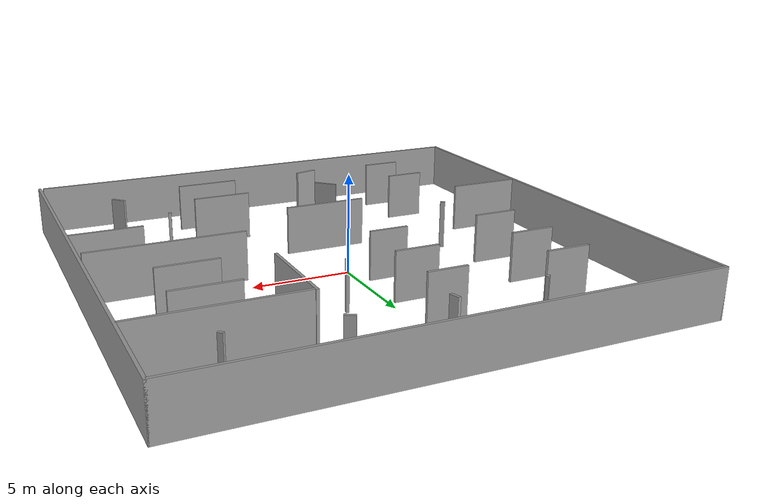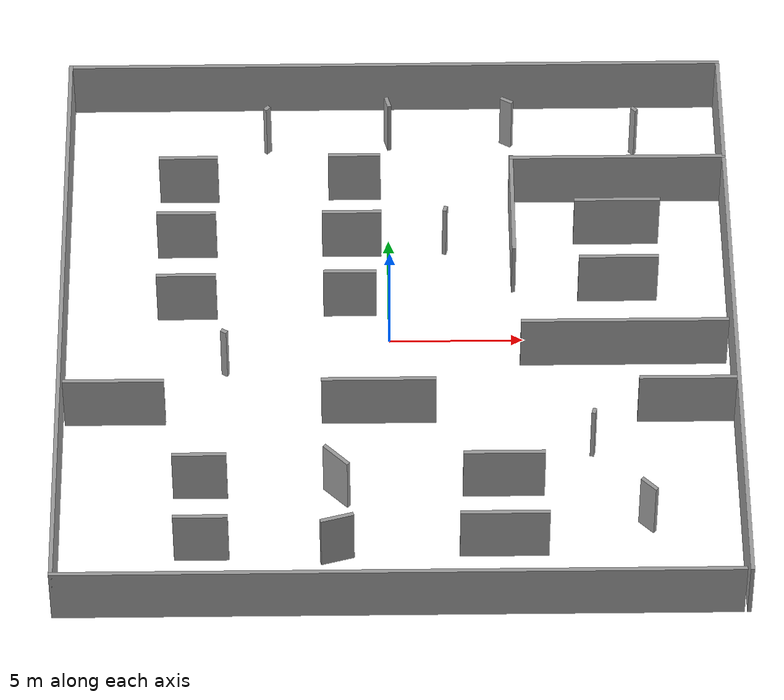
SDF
<?xml version='1.0'?>
<sdf version='1.7'>
  <model name='Untitled'>
    <pose>0.288291 -0.441187 0 0 -0 0</pose>
    <link name='Wall_1'>
      <collision name='Wall_1_Collision'>
        <geometry>
          <box>
            <size>25 0.15 2.5</size>
          </box>
        </geometry>
        <pose>0 0 1.25 0 -0 0</pose>
      </collision>
      <visual name='Wall_1_Visual'>
        <pose>0 0 1.25 0 -0 0</pose>
        <geometry>
          <box>
            <size>25 0.15 2.5</size>
          </box>
        </geometry>
        <material>
          <script>
            <uri>file://media/materials/scripts/gazebo.material</uri>
            <name>Gazebo/Grey</name>
          </script>
          <ambient>1 1 1 1</ambient>
        </material>
        <meta>
          <layer>0</layer>
        </meta>
      </visual>
      <pose>-12.55 -0 0 0 -0 -1.5708</pose>
    </link>
    <link name='Wall_10'>
      <collision name='Wall_10_Collision'>
        <geometry>
          <box>
            <size>7.75 0.15 2.5</size>
          </box>
        </geometry>
        <pose>0 0 1.25 0 -0 0</pose>
      </collision>
      <visual name='Wall_10_Visual'>
        <pose>0 0 1.25 0 -0 0</pose>
        <geometry>
          <box>
            <size>7.75 0.15 2.5</size>
          </box>
        </geometry>
        <material>
          <script>
            <uri>file://media/materials/scripts/gazebo.material</uri>
            <name>Gazebo/Grey</name>
          </script>
          <ambient>1 1 1 1</ambient>
        </material>
        <meta>
          <layer>0</layer>
        </meta>
      </visual>
      <pose>8.45676 -0.713653 0 0 -0 0</pose>
    </link>
    <link name='Wall_12'>
      <collision name='Wall_12_Collision'>
        <geometry>
          <box>
            <size>4.76551 0.15 2.5</size>
          </box>
        </geometry>
        <pose>0 0 1.25 0 -0 0</pose>
      </collision>
      <visual name='Wall_12_Visual'>
        <pose>0 0 1.25 0 -0 0</pose>
        <geometry>
          <box>
            <size>4.76551 0.15 2.5</size>
          </box>
        </geometry>
        <material>
          <script>
            <uri>file://media/materials/scripts/gazebo.material</uri>
            <name>Gazebo/Grey</name>
          </script>
          <ambient>1 1 1 1</ambient>
        </material>
        <meta>
          <layer>0</layer>
        </meta>
      </visual>
      <pose>4.41402 5.23153 0 0 -0 -1.5708</pose>
    </link>
    <link name='Wall_14'>
      <collision name='Wall_14_Collision'>
        <geometry>
          <box>
            <size>3.75 0.15 2.5</size>
          </box>
        </geometry>
        <pose>0 0 1.25 0 -0 0</pose>
      </collision>
      <visual name='Wall_14_Visual'>
        <pose>0 0 1.25 0 -0 0</pose>
        <geometry>
          <box>
            <size>3.75 0.15 2.5</size>
          </box>
        </geometry>
        <material>
          <script>
            <uri>file://media/materials/scripts/gazebo.material</uri>
            <name>Gazebo/Grey</name>
          </script>
          <ambient>1 1 1 1</ambient>
        </material>
        <meta>
          <layer>0</layer>
        </meta>
      </visual>
      <pose>-10.5346 -3.46463 0 0 -0 0</pose>
    </link>
    <link name='Wall_17'>
      <collision name='Wall_17_Collision'>
        <geometry>
          <box>
            <size>4.25 0.15 2.5</size>
          </box>
        </geometry>
        <pose>0 0 1.25 0 -0 0</pose>
      </collision>
      <visual name='Wall_17_Visual'>
        <pose>0 0 1.25 0 -0 0</pose>
        <geometry>
          <box>
            <size>4.25 0.15 2.5</size>
          </box>
        </geometry>
        <material>
          <script>
            <uri>file://media/materials/scripts/gazebo.material</uri>
            <name>Gazebo/Grey</name>
          </script>
          <ambient>1 1 1 1</ambient>
        </material>
        <meta>
          <layer>0</layer>
        </meta>
      </visual>
      <pose>-0.737069 -3.46463 0 0 -0 0</pose>
    </link>
    <link name='Wall_19'>
      <collision name='Wall_19_Collision'>
        <geometry>
          <box>
            <size>3.75 0.15 2.5</size>
          </box>
        </geometry>
        <pose>0 0 1.25 0 -0 0</pose>
      </collision>
      <visual name='Wall_19_Visual'>
        <pose>0 0 1.25 0 -0 0</pose>
        <geometry>
          <box>
            <size>3.75 0.15 2.5</size>
          </box>
        </geometry>
        <material>
          <script>
            <uri>file://media/materials/scripts/gazebo.material</uri>
            <name>Gazebo/Grey</name>
          </script>
          <ambient>1 1 1 1</ambient>
        </material>
        <meta>
          <layer>0</layer>
        </meta>
      </visual>
      <pose>10.745 -3.50509 0 0 -0 0</pose>
    </link>
    <link name='Wall_21'>
      <collision name='Wall_21_Collision'>
        <geometry>
          <box>
            <size>2.25 0.15 2.5</size>
          </box>
        </geometry>
        <pose>0 0 1.25 0 -0 0</pose>
      </collision>
      <visual name='Wall_21_Visual'>
        <pose>0 0 1.25 0 -0 0</pose>
        <geometry>
          <box>
            <size>2.25 0.15 2.5</size>
          </box>
        </geometry>
        <material>
          <script>
            <uri>file://media/materials/scripts/gazebo.material</uri>
            <name>Gazebo/Grey</name>
          </script>
          <ambient>1 1 1 1</ambient>
        </material>
        <meta>
          <layer>0</layer>
        </meta>
      </visual>
      <pose>-7.92677 7.62019 0 0 -0 0</pose>
    </link>
    <link name='Wall_23'>
      <collision name='Wall_23_Collision'>
        <geometry>
          <box>
            <size>2.25 0.15 2.5</size>
          </box>
        </geometry>
        <pose>0 0 1.25 0 -0 0</pose>
      </collision>
      <visual name='Wall_23_Visual'>
        <pose>0 0 1.25 0 -0 0</pose>
        <geometry>
          <box>
            <size>2.25 0.15 2.5</size>
          </box>
        </geometry>
        <material>
          <script>
            <uri>file://media/materials/scripts/gazebo.material</uri>
            <name>Gazebo/Grey</name>
          </script>
          <ambient>1 1 1 1</ambient>
        </material>
        <meta>
          <layer>0</layer>
        </meta>
      </visual>
      <pose>-7.96723 4.78831 0 0 -0 0</pose>
    </link>
    <link name='Wall_25'>
      <collision name='Wall_25_Collision'>
        <geometry>
          <box>
            <size>2.25 0.15 2.5</size>
          </box>
        </geometry>
        <pose>0 0 1.25 0 -0 0</pose>
      </collision>
      <visual name='Wall_25_Visual'>
        <pose>0 0 1.25 0 -0 0</pose>
        <geometry>
          <box>
            <size>2.25 0.15 2.5</size>
          </box>
        </geometry>
        <material>
          <script>
            <uri>file://media/materials/scripts/gazebo.material</uri>
            <name>Gazebo/Grey</name>
          </script>
          <ambient>1 1 1 1</ambient>
        </material>
        <meta>
          <layer>0</layer>
        </meta>
      </visual>
      <pose>-7.92677 1.67323 0 0 -0 0</pose>
    </link>
    <link name='Wall_27'>
      <collision name='Wall_27_Collision'>
        <geometry>
          <box>
            <size>2 0.15 2.5</size>
          </box>
        </geometry>
        <pose>0 0 1.25 0 -0 0</pose>
      </collision>
      <visual name='Wall_27_Visual'>
        <pose>0 0 1.25 0 -0 0</pose>
        <geometry>
          <box>
            <size>2 0.15 2.5</size>
          </box>
        </geometry>
        <material>
          <script>
            <uri>file://media/materials/scripts/gazebo.material</uri>
            <name>Gazebo/Grey</name>
          </script>
          <ambient>1 1 1 1</ambient>
        </material>
        <meta>
          <layer>0</layer>
        </meta>
      </visual>
      <pose>-1.57888 7.70111 0 0 -0 0</pose>
    </link>
    <link name='Wall_29'>
      <collision name='Wall_29_Collision'>
        <geometry>
          <box>
            <size>2.25 0.15 2.5</size>
          </box>
        </geometry>
        <pose>0 0 1.25 0 -0 0</pose>
      </collision>
      <visual name='Wall_29_Visual'>
        <pose>0 0 1.25 0 -0 0</pose>
        <geometry>
          <box>
            <size>2.25 0.15 2.5</size>
          </box>
        </geometry>
        <material>
          <script>
            <uri>file://media/materials/scripts/gazebo.material</uri>
            <name>Gazebo/Grey</name>
          </script>
          <ambient>1 1 1 1</ambient>
        </material>
        <meta>
          <layer>0</layer>
        </meta>
      </visual>
      <pose>-1.69661 4.78831 0 0 -0 0</pose>
    </link>
    <link name='Wall_3'>
      <collision name='Wall_3_Collision'>
        <geometry>
          <box>
            <size>25 0.15 2.5</size>
          </box>
        </geometry>
        <pose>0 0 1.25 0 -0 0</pose>
      </collision>
      <visual name='Wall_3_Visual'>
        <pose>0 0 1.25 0 -0 0</pose>
        <geometry>
          <box>
            <size>25 0.15 2.5</size>
          </box>
        </geometry>
        <material>
          <script>
            <uri>file://media/materials/scripts/gazebo.material</uri>
            <name>Gazebo/Grey</name>
          </script>
          <ambient>1 1 1 1</ambient>
        </material>
        <meta>
          <layer>0</layer>
        </meta>
      </visual>
      <pose>-0.125 -12.425 0 0 -0 0</pose>
    </link>
    <link name='Wall_31'>
      <collision name='Wall_31_Collision'>
        <geometry>
          <box>
            <size>2 0.15 2.5</size>
          </box>
        </geometry>
        <pose>0 0 1.25 0 -0 0</pose>
      </collision>
      <visual name='Wall_31_Visual'>
        <pose>0 0 1.25 0 -0 0</pose>
        <geometry>
          <box>
            <size>2 0.15 2.5</size>
          </box>
        </geometry>
        <material>
          <script>
            <uri>file://media/materials/scripts/gazebo.material</uri>
            <name>Gazebo/Grey</name>
          </script>
          <ambient>1 1 1 1</ambient>
        </material>
        <meta>
          <layer>0</layer>
        </meta>
      </visual>
      <pose>-1.78116 1.79459 0 0 -0 0</pose>
    </link>
    <link name='Wall_34'>
      <collision name='Wall_34_Collision'>
        <geometry>
          <box>
            <size>3.25 0.15 2.5</size>
          </box>
        </geometry>
        <pose>0 0 1.25 0 -0 0</pose>
      </collision>
      <visual name='Wall_34_Visual'>
        <pose>0 0 1.25 0 -0 0</pose>
        <geometry>
          <box>
            <size>3.25 0.15 2.5</size>
          </box>
        </geometry>
        <material>
          <script>
            <uri>file://media/materials/scripts/gazebo.material</uri>
            <name>Gazebo/Grey</name>
          </script>
          <ambient>1 1 1 1</ambient>
        </material>
        <meta>
          <layer>0</layer>
        </meta>
      </visual>
      <pose>8.39136 5.31423 0 0 -0 0</pose>
    </link>
    <link name='Wall_36'>
      <collision name='Wall_36_Collision'>
        <geometry>
          <box>
            <size>3 0.15 2.5</size>
          </box>
        </geometry>
        <pose>0 0 1.25 0 -0 0</pose>
      </collision>
      <visual name='Wall_36_Visual'>
        <pose>0 0 1.25 0 -0 0</pose>
        <geometry>
          <box>
            <size>3 0.15 2.5</size>
          </box>
        </geometry>
        <material>
          <script>
            <uri>file://media/materials/scripts/gazebo.material</uri>
            <name>Gazebo/Grey</name>
          </script>
          <ambient>1 1 1 1</ambient>
        </material>
        <meta>
          <layer>0</layer>
        </meta>
      </visual>
      <pose>8.34727 2.44188 0 0 -0 0</pose>
    </link>
    <link name='Wall_40'>
      <collision name='Wall_40_Collision'>
        <geometry>
          <box>
            <size>0.5 0.15 2.5</size>
          </box>
        </geometry>
        <pose>0 0 1.25 0 -0 0</pose>
      </collision>
      <visual name='Wall_40_Visual'>
        <pose>0 0 1.25 0 -0 0</pose>
        <geometry>
          <box>
            <size>0.5 0.15 2.5</size>
          </box>
        </geometry>
        <material>
          <script>
            <uri>file://media/materials/scripts/gazebo.material</uri>
            <name>Gazebo/Grey</name>
          </script>
          <ambient>1 1 1 1</ambient>
        </material>
        <meta>
          <layer>0</layer>
        </meta>
      </visual>
      <pose>4.32285 10.486 0 0 -0 -0.523599</pose>
    </link>
    <link name='Wall_42'>
      <collision name='Wall_42_Collision'>
        <geometry>
          <box>
            <size>0.25 0.15 2.5</size>
          </box>
        </geometry>
        <pose>0 0 1.25 0 -0 0</pose>
      </collision>
      <visual name='Wall_42_Visual'>
        <pose>0 0 1.25 0 -0 0</pose>
        <geometry>
          <box>
            <size>0.25 0.15 2.5</size>
          </box>
        </geometry>
        <material>
          <script>
            <uri>file://media/materials/scripts/gazebo.material</uri>
            <name>Gazebo/Grey</name>
          </script>
          <ambient>1 1 1 1</ambient>
        </material>
        <meta>
          <layer>0</layer>
        </meta>
      </visual>
      <pose>9.22314 9.97172 0 0 -0 -0.785398</pose>
    </link>
    <link name='Wall_44'>
      <collision name='Wall_44_Collision'>
        <geometry>
          <box>
            <size>0.25 0.15 2.5</size>
          </box>
        </geometry>
        <pose>0 0 1.25 0 -0 0</pose>
      </collision>
      <visual name='Wall_44_Visual'>
        <pose>0 0 1.25 0 -0 0</pose>
        <geometry>
          <box>
            <size>0.25 0.15 2.5</size>
          </box>
        </geometry>
        <material>
          <script>
            <uri>file://media/materials/scripts/gazebo.material</uri>
            <name>Gazebo/Grey</name>
          </script>
          <ambient>1 1 1 1</ambient>
        </material>
        <meta>
          <layer>0</layer>
        </meta>
      </visual>
      <pose>-4.92611 10.174 0 0 -0 -2.35619</pose>
    </link>
    <link name='Wall_46'>
      <collision name='Wall_46_Collision'>
        <geometry>
          <box>
            <size>0.5 0.15 2.5</size>
          </box>
        </geometry>
        <pose>0 0 1.25 0 -0 0</pose>
      </collision>
      <visual name='Wall_46_Visual'>
        <pose>0 0 1.25 0 -0 0</pose>
        <geometry>
          <box>
            <size>0.5 0.15 2.5</size>
          </box>
        </geometry>
        <material>
          <script>
            <uri>file://media/materials/scripts/gazebo.material</uri>
            <name>Gazebo/Grey</name>
          </script>
          <ambient>1 1 1 1</ambient>
        </material>
        <meta>
          <layer>0</layer>
        </meta>
      </visual>
      <pose>-0.273985 10.4449 0 0 -0 -1.309</pose>
    </link>
    <link name='Wall_48'>
      <collision name='Wall_48_Collision'>
        <geometry>
          <box>
            <size>0.25 0.15 2.5</size>
          </box>
        </geometry>
        <pose>0 0 1.25 0 -0 0</pose>
      </collision>
      <visual name='Wall_48_Visual'>
        <pose>0 0 1.25 0 -0 0</pose>
        <geometry>
          <box>
            <size>0.25 0.15 2.5</size>
          </box>
        </geometry>
        <material>
          <script>
            <uri>file://media/materials/scripts/gazebo.material</uri>
            <name>Gazebo/Grey</name>
          </script>
          <ambient>1 1 1 1</ambient>
        </material>
        <meta>
          <layer>0</layer>
        </meta>
      </visual>
      <pose>1.85238 4.90183 0 0 -0 -1.8326</pose>
    </link>
    <link name='Wall_5'>
      <collision name='Wall_5_Collision'>
        <geometry>
          <box>
            <size>25.25 0.15 2.5</size>
          </box>
        </geometry>
        <pose>0 0 1.25 0 -0 0</pose>
      </collision>
      <visual name='Wall_5_Visual'>
        <pose>0 0 1.25 0 -0 0</pose>
        <geometry>
          <box>
            <size>25.25 0.15 2.5</size>
          </box>
        </geometry>
        <material>
          <script>
            <uri>file://media/materials/scripts/gazebo.material</uri>
            <name>Gazebo/Grey</name>
          </script>
          <ambient>1 1 1 1</ambient>
        </material>
        <meta>
          <layer>0</layer>
        </meta>
      </visual>
      <pose>0 12.425 0 0 -0 0</pose>
    </link>
    <link name='Wall_50'>
      <collision name='Wall_50_Collision'>
        <geometry>
          <box>
            <size>2 0.15 2.5</size>
          </box>
        </geometry>
        <pose>0 0 1.25 0 -0 0</pose>
      </collision>
      <visual name='Wall_50_Visual'>
        <pose>0 0 1.25 0 -0 0</pose>
        <geometry>
          <box>
            <size>2 0.15 2.5</size>
          </box>
        </geometry>
        <material>
          <script>
            <uri>file://media/materials/scripts/gazebo.material</uri>
            <name>Gazebo/Grey</name>
          </script>
          <ambient>1 1 1 1</ambient>
        </material>
        <meta>
          <layer>0</layer>
        </meta>
      </visual>
      <pose>-7.32357 -6.98427 0 0 -0 0</pose>
    </link>
    <link name='Wall_52'>
      <collision name='Wall_52_Collision'>
        <geometry>
          <box>
            <size>2 0.15 2.5</size>
          </box>
        </geometry>
        <pose>0 0 1.25 0 -0 0</pose>
      </collision>
      <visual name='Wall_52_Visual'>
        <pose>0 0 1.25 0 -0 0</pose>
        <geometry>
          <box>
            <size>2 0.15 2.5</size>
          </box>
        </geometry>
        <material>
          <script>
            <uri>file://media/materials/scripts/gazebo.material</uri>
            <name>Gazebo/Grey</name>
          </script>
          <ambient>1 1 1 1</ambient>
        </material>
        <meta>
          <layer>0</layer>
        </meta>
      </visual>
      <pose>-7.24266 -9.85661 0 0 -0 0</pose>
    </link>
    <link name='Wall_54'>
      <collision name='Wall_54_Collision'>
        <geometry>
          <box>
            <size>3 0.15 2.5</size>
          </box>
        </geometry>
        <pose>0 0 1.25 0 -0 0</pose>
      </collision>
      <visual name='Wall_54_Visual'>
        <pose>0 0 1.25 0 -0 0</pose>
        <geometry>
          <box>
            <size>3 0.15 2.5</size>
          </box>
        </geometry>
        <material>
          <script>
            <uri>file://media/materials/scripts/gazebo.material</uri>
            <name>Gazebo/Grey</name>
          </script>
          <ambient>1 1 1 1</ambient>
        </material>
        <meta>
          <layer>0</layer>
        </meta>
      </visual>
      <pose>3.81624 -6.98427 0 0 -0 0</pose>
    </link>
    <link name='Wall_56'>
      <collision name='Wall_56_Collision'>
        <geometry>
          <box>
            <size>3.25 0.15 2.5</size>
          </box>
        </geometry>
        <pose>0 0 1.25 0 -0 0</pose>
      </collision>
      <visual name='Wall_56_Visual'>
        <pose>0 0 1.25 0 -0 0</pose>
        <geometry>
          <box>
            <size>3.25 0.15 2.5</size>
          </box>
        </geometry>
        <material>
          <script>
            <uri>file://media/materials/scripts/gazebo.material</uri>
            <name>Gazebo/Grey</name>
          </script>
          <ambient>1 1 1 1</ambient>
        </material>
        <meta>
          <layer>0</layer>
        </meta>
      </visual>
      <pose>3.77942 -9.7757 0 0 -0 0</pose>
    </link>
    <link name='Wall_59'>
      <collision name='Wall_59_Collision'>
        <geometry>
          <box>
            <size>1.25 0.15 2.5</size>
          </box>
        </geometry>
        <pose>0 0 1.25 0 -0 0</pose>
      </collision>
      <visual name='Wall_59_Visual'>
        <pose>0 0 1.25 0 -0 0</pose>
        <geometry>
          <box>
            <size>1.25 0.15 2.5</size>
          </box>
        </geometry>
        <material>
          <script>
            <uri>file://media/materials/scripts/gazebo.material</uri>
            <name>Gazebo/Grey</name>
          </script>
          <ambient>1 1 1 1</ambient>
        </material>
        <meta>
          <layer>0</layer>
        </meta>
      </visual>
      <pose>-2.31725 -7.04953 0 0 -0 -0.785398</pose>
    </link>
    <link name='Wall_6'>
      <collision name='Wall_6_Collision'>
        <geometry>
          <box>
            <size>25 0.15 2.5</size>
          </box>
        </geometry>
        <pose>0 0 1.25 0 -0 0</pose>
      </collision>
      <visual name='Wall_6_Visual'>
        <pose>0 0 1.25 0 -0 0</pose>
        <geometry>
          <box>
            <size>25 0.15 2.5</size>
          </box>
        </geometry>
        <material>
          <script>
            <uri>file://media/materials/scripts/gazebo.material</uri>
            <name>Gazebo/Grey</name>
          </script>
          <ambient>1 1 1 1</ambient>
        </material>
        <meta>
          <layer>0</layer>
        </meta>
      </visual>
      <pose>12.55 -0 0 0 -0 -1.5708</pose>
    </link>
    <link name='Wall_61'>
      <collision name='Wall_61_Collision'>
        <geometry>
          <box>
            <size>1.25 0.15 2.5</size>
          </box>
        </geometry>
        <pose>0 0 1.25 0 -0 0</pose>
      </collision>
      <visual name='Wall_61_Visual'>
        <pose>0 0 1.25 0 -0 0</pose>
        <geometry>
          <box>
            <size>1.25 0.15 2.5</size>
          </box>
        </geometry>
        <material>
          <script>
            <uri>file://media/materials/scripts/gazebo.material</uri>
            <name>Gazebo/Grey</name>
          </script>
          <ambient>1 1 1 1</ambient>
        </material>
        <meta>
          <layer>0</layer>
        </meta>
      </visual>
      <pose>-2.30694 -9.95851 0 0 -0 -2.87979</pose>
    </link>
    <link name='Wall_63'>
      <collision name='Wall_63_Collision'>
        <geometry>
          <box>
            <size>0.25 0.15 2.5</size>
          </box>
        </geometry>
        <pose>0 0 1.25 0 -0 0</pose>
      </collision>
      <visual name='Wall_63_Visual'>
        <pose>0 0 1.25 0 -0 0</pose>
        <geometry>
          <box>
            <size>0.25 0.15 2.5</size>
          </box>
        </geometry>
        <material>
          <script>
            <uri>file://media/materials/scripts/gazebo.material</uri>
            <name>Gazebo/Grey</name>
          </script>
          <ambient>1 1 1 1</ambient>
        </material>
        <meta>
          <layer>0</layer>
        </meta>
      </visual>
      <pose>-6.46568 -1.10275 0 0 -0 -0.523599</pose>
    </link>
    <link name='Wall_65'>
      <collision name='Wall_65_Collision'>
        <geometry>
          <box>
            <size>0.75 0.15 2.5</size>
          </box>
        </geometry>
        <pose>0 0 1.25 0 -0 0</pose>
      </collision>
      <visual name='Wall_65_Visual'>
        <pose>0 0 1.25 0 -0 0</pose>
        <geometry>
          <box>
            <size>0.75 0.15 2.5</size>
          </box>
        </geometry>
        <material>
          <script>
            <uri>file://media/materials/scripts/gazebo.material</uri>
            <name>Gazebo/Grey</name>
          </script>
          <ambient>1 1 1 1</ambient>
        </material>
        <meta>
          <layer>0</layer>
        </meta>
      </visual>
      <pose>9.03581 -8.53143 0 0 -0 -0.785398</pose>
    </link>
    <link name='Wall_68'>
      <collision name='Wall_68_Collision'>
        <geometry>
          <box>
            <size>0.25 0.15 2.5</size>
          </box>
        </geometry>
        <pose>0 0 1.25 0 -0 0</pose>
      </collision>
      <visual name='Wall_68_Visual'>
        <pose>0 0 1.25 0 -0 0</pose>
        <geometry>
          <box>
            <size>0.25 0.15 2.5</size>
          </box>
        </geometry>
        <material>
          <script>
            <uri>file://media/materials/scripts/gazebo.material</uri>
            <name>Gazebo/Grey</name>
          </script>
          <ambient>1 1 1 1</ambient>
        </material>
        <meta>
          <layer>0</layer>
        </meta>
      </visual>
      <pose>7.15206 -5.0907 0 0 -0 -1.8326</pose>
    </link>
    <link name='Wall_8'>
      <collision name='Wall_8_Collision'>
        <geometry>
          <box>
            <size>8.25 0.15 2.5</size>
          </box>
        </geometry>
        <pose>0 0 1.25 0 -0 0</pose>
      </collision>
      <visual name='Wall_8_Visual'>
        <pose>0 0 1.25 0 -0 0</pose>
        <geometry>
          <box>
            <size>8.25 0.15 2.5</size>
          </box>
        </geometry>
        <material>
          <script>
            <uri>file://media/materials/scripts/gazebo.material</uri>
            <name>Gazebo/Grey</name>
          </script>
          <ambient>1 1 1 1</ambient>
        </material>
        <meta>
          <layer>0</layer>
        </meta>
      </visual>
      <pose>8.46402 7.49883 0 0 -0 0</pose>
    </link>
    <static>1</static>
  </model>
</sdf>
